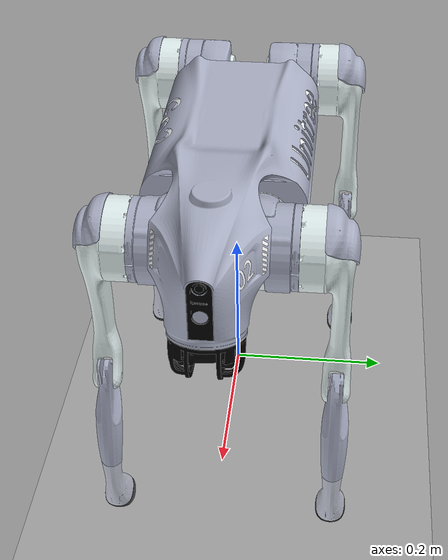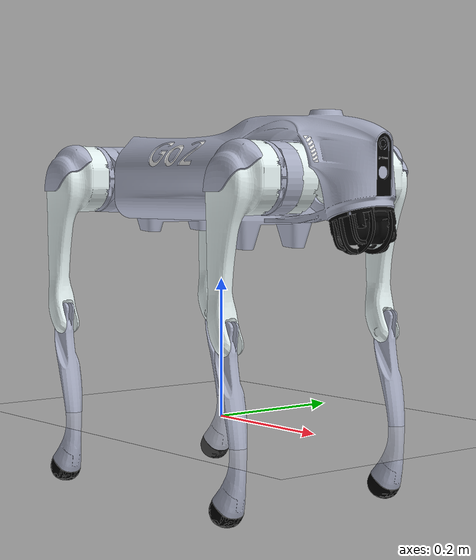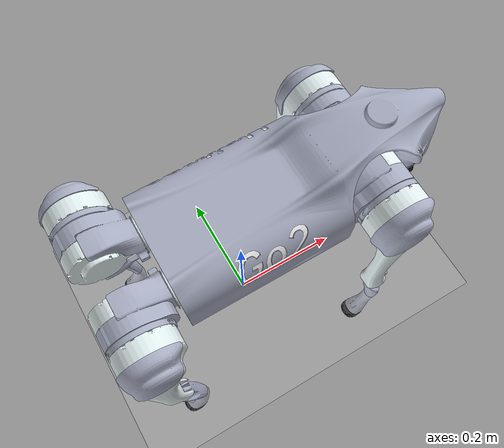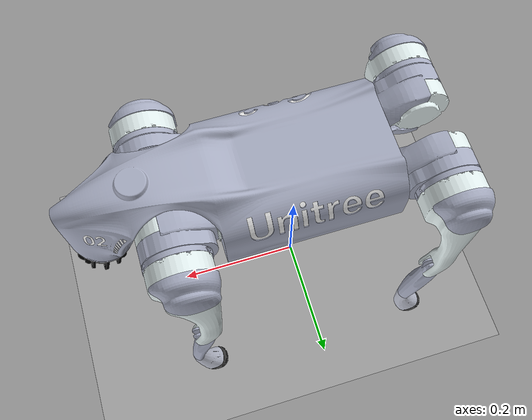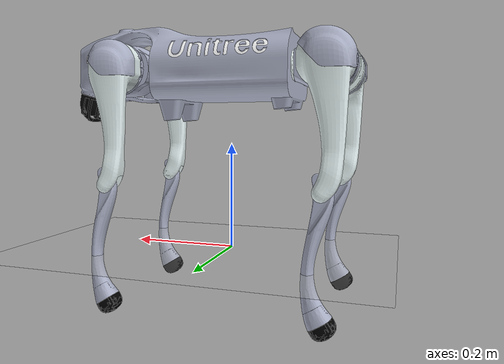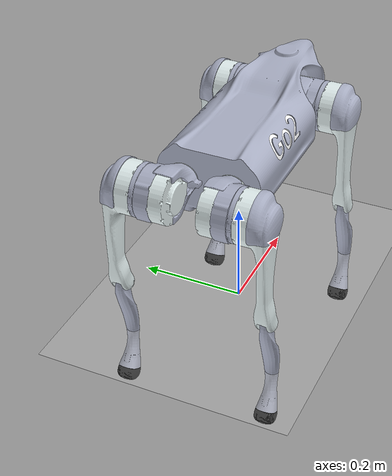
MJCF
<mujoco model="go2_description">
  <compiler angle="radian" autolimits="true" inertiafromgeom="false" meshdir="assets/go2"/>
  <option timestep="0.001" gravity="0 0 -9.81" integrator="implicitfast"/>

  <default>
    <joint damping="0.5" armature="0.01" frictionloss="0.05"/>
    <geom friction="1.2 0.005 0.0001" condim="3" contype="1" conaffinity="0"/>
    <position ctrllimited="true" forcelimited="true"/>
    <default class="collision">
      <geom group="3"/>
    </default>
    <default class="visual">
      <geom type="mesh" group="1" contype="0" conaffinity="0" mass="0"/>
    </default>
  </default>

  <asset>
    <mesh name="Go2_base_0" file="Go2_base_0.obj"/>
    <mesh name="Go2_base_1" file="Go2_base_1.obj"/>
    <mesh name="Go2_base_2" file="Go2_base_2.obj"/>
    <mesh name="Go2_base_3" file="Go2_base_3.obj"/>
    <mesh name="Go2_base_4" file="Go2_base_4.obj"/>
    <mesh name="Go2_hip_0" file="Go2_hip_0.obj"/>
    <mesh name="Go2_hip_1" file="Go2_hip_1.obj"/>
    <mesh name="Go2_thigh_0" file="Go2_thigh_0.obj"/>
    <mesh name="Go2_thigh_1" file="Go2_thigh_1.obj"/>
    <mesh name="Go2_calf_0" file="Go2_calf_0.obj"/>
    <mesh name="Go2_calf_1" file="Go2_calf_1.obj"/>
    <mesh name="Go2_foot_0" file="Go2_foot_0.obj"/>
    <mesh name="Go2_thigh_mirror_0" file="Go2_thigh_mirror_0.obj"/>
    <mesh name="Go2_thigh_mirror_1" file="Go2_thigh_mirror_1.obj"/>
    <mesh name="Go2_calf_mirror_0" file="Go2_calf_mirror_0.obj"/>
    <mesh name="Go2_calf_mirror_1" file="Go2_calf_mirror_1.obj"/>
  </asset>

  <worldbody>
    <geom name="floor" type="plane" size="10 10 0.1" contype="1" conaffinity="1" rgba="0.8 0.8 0.8 1"/>
    <light pos="0 0 2" dir="0 0 -1"/>

    <!-- Spawn above standing contact: nominal 0.3 + foot bottom 0.022 + clearance 0.02. -->
    <body name="base" pos="0 0 0.342">
      <freejoint name="root"/>
      <inertial pos="0.021112 0 -0.005366" mass="6.921" fullinertia="0.02448 0.098077 0.107 0.00012166 0.0014849 -3.12E-05"/>
      <geom name="base_collision" class="collision" type="box" size="0.1881 0.04675 0.057" rgba="0.2 0.3 0.6 1"/>
      <geom name="base_visual_0" class="visual" mesh="Go2_base_0" rgba="0.6717055 0.6924257 0.7742702 1"/>
      <geom name="base_visual_1" class="visual" mesh="Go2_base_1" rgba="1 1 1 1"/>
      <geom name="base_visual_2" class="visual" mesh="Go2_base_2" rgba="0.009018 0.009018 0.009018 1"/>
      <geom name="base_visual_3" class="visual" mesh="Go2_base_3" rgba="0.01341 0.01341 0.01341 1"/>
      <geom name="base_visual_4" class="visual" mesh="Go2_base_4" rgba="0.023455 0.023455 0.023455 1"/>
      <body name="Head_upper" pos="0.285 0 0.01">
        <inertial pos="0 0 0" mass="0.001" fullinertia="9.6e-06 9.6e-06 9.6e-06 0 0 0"/>
        <geom name="Head_upper_collision" class="collision" type="cylinder" size="0.05 0.045" rgba="0.5 0.5 0.5 1"/>
        <body name="Head_lower" pos="0.008 0 -0.07">
          <inertial pos="0 0 0" mass="0.001" fullinertia="9.6e-06 9.6e-06 9.6e-06 0 0 0"/>
          <geom name="Head_lower_collision" class="collision" type="sphere" size="0.047" rgba="0.5 0.5 0.5 1"/>
        </body>
      </body>
      <body name="FL_hip" pos="0.1934 0.0465 0">
        <joint name="FL_hip_joint" type="hinge" axis="1 0 0" range="-1.0472 1.0472"/>
        <inertial pos="-0.0054 0.00194 -0.000105" mass="0.678" fullinertia="0.00048 0.000884 0.000596 -3.01E-06 1.11E-06 -1.42E-06"/>
        <geom name="FL_hip_collision" class="collision" type="cylinder" size="0.046 0.02" pos="0 0.08 0" quat="0.7071067811865476 0.7071067811865475 0.0 0.0" rgba="0.35 0.35 0.35 1"/>
        <geom name="FL_hip_visual_0" class="visual" mesh="Go2_hip_0" rgba="0.6717055 0.6924257 0.7742702 1"/>
        <geom name="FL_hip_visual_1" class="visual" mesh="Go2_hip_1" rgba="0.9 0.95 0.95 1"/>
        <body name="FL_thigh" pos="0 0.0955 0">
          <joint name="FL_thigh_joint" type="hinge" axis="0 1 0" range="-1.5708 3.4907"/>
          <inertial pos="-0.00374 -0.0223 -0.0327" mass="1.152" fullinertia="0.00584 0.0058 0.00103 8.72E-05 -0.000289 0.000808"/>
          <geom name="FL_thigh_collision" class="collision" type="box" size="0.1065 0.01225 0.017" pos="0 0 -0.1065" quat="0.7071067811865476 0.0 0.7071067811865475 0.0" rgba="0.35 0.35 0.35 1"/>
          <geom name="FL_thigh_visual_0" class="visual" mesh="Go2_thigh_0" rgba="0.6717055 0.6924257 0.7742702 1"/>
          <geom name="FL_thigh_visual_1" class="visual" mesh="Go2_thigh_1" rgba="0.9 0.95 0.95 1"/>
          <body name="FL_calf" pos="0 0 -0.213">
            <joint name="FL_calf_joint" type="hinge" axis="0 1 0" range="-2.7227 -0.83776"/>
            <inertial pos="0.00548 -0.000975 -0.115" mass="0.154" fullinertia="0.00108 0.0011 3.29E-05 3.4E-07 1.72E-05 8.28E-06"/>
            <geom name="FL_calf_collision" class="collision" type="cylinder" size="0.012 0.06" pos="0.008 0 -0.06" quat="0.9944925627484974 0.0 -0.10480716882888248 0.0" rgba="0.35 0.35 0.35 1"/>
            <geom name="FL_calf_visual_0" class="visual" mesh="Go2_calf_0" rgba="0 0 0 1"/>
            <geom name="FL_calf_visual_1" class="visual" mesh="Go2_calf_1" rgba="0.6717055 0.6924257 0.7742702 1"/>
            <body name="FL_calflower" pos="0.020 0 -0.148" quat="0.9996875162757026 0.0 0.024997395914712332 0.0">
              <!-- FL_calflower: massless in URDF -->
              <geom name="FL_calflower_collision" class="collision" type="cylinder" size="0.011 0.0325" rgba="0.5 0.5 0.5 1"/>
              <body name="FL_calflower1" pos="-0.01 0 -0.04" quat="0.9713379748520297 0.0 0.23770262642713458 0.0">
                <!-- FL_calflower1: massless in URDF -->
                <geom name="FL_calflower1_collision" class="collision" type="cylinder" size="0.0155 0.015" rgba="0.5 0.5 0.5 1"/>
              </body>
            </body>
            <body name="FL_foot" pos="0 0 -0.213">
              <inertial pos="0 0 0" mass="0.04" fullinertia="9.6e-06 9.6e-06 9.6e-06 0 0 0"/>
              <geom name="FL_foot_collision" class="collision" type="sphere" size="0.022" pos="-0.002 0 0" rgba="0.9 0.4 0.2 1"/>
              <geom name="FL_foot_visual" class="visual" mesh="Go2_foot_0" rgba="0 0 0 1"/>
              <site name="FL_foot_site" pos="0 0 0" size="0.006"/>
            </body>
          </body>
          <body name="FL_calf_rotor" pos="0 -0.03235 0">
            <inertial pos="0.0 0.0 0.0" mass="0.089" fullinertia="0.000059647 0.000111842 0.000059647 0.0 0.0 0.0"/>
          </body>
        </body>
        <body name="FL_thigh_rotor" pos="0 -0.00015 0">
          <inertial pos="0.0 0.0 0.0" mass="0.089" fullinertia="0.000059647 0.000111842 0.000059647 0.0 0.0 0.0"/>
        </body>
      </body>
      <body name="FL_hip_rotor" pos="0.11215 0.04675 0">
        <inertial pos="0.0 0.0 0.0" mass="0.089" fullinertia="0.000111842 0.000059647 0.000059647 0.0 0.0 0.0"/>
      </body>
      <body name="FR_hip" pos="0.1934 -0.0465 0">
        <joint name="FR_hip_joint" type="hinge" axis="1 0 0" range="-1.0472 1.0472"/>
        <inertial pos="-0.0054 -0.00194 -0.000105" mass="0.678" fullinertia="0.00048 0.000884 0.000596 3.01E-06 1.11E-06 1.42E-06"/>
        <geom name="FR_hip_collision" class="collision" type="cylinder" size="0.046 0.02" pos="0 -0.08 0" quat="0.7071067811865476 0.7071067811865475 0.0 0.0" rgba="0.35 0.35 0.35 1"/>
        <geom name="FR_hip_visual_0" class="visual" mesh="Go2_hip_0" quat="4.632679487995776e-05 0.999999998926914 0.0 0.0" rgba="0.6717055 0.6924257 0.7742702 1"/>
        <geom name="FR_hip_visual_1" class="visual" mesh="Go2_hip_1" quat="4.632679487995776e-05 0.999999998926914 0.0 0.0" rgba="0.9 0.95 0.95 1"/>
        <body name="FR_thigh" pos="0 -0.0955 0">
          <joint name="FR_thigh_joint" type="hinge" axis="0 1 0" range="-1.5708 3.4907"/>
          <inertial pos="-0.00374 0.0223 -0.0327" mass="1.152" fullinertia="0.00584 0.0058 0.00103 -8.72E-05 -0.000289 -0.000808"/>
          <geom name="FR_thigh_collision" class="collision" type="box" size="0.1065 0.01225 0.017" pos="0 0 -0.1065" quat="0.7071067811865476 0.0 0.7071067811865475 0.0" rgba="0.35 0.35 0.35 1"/>
          <geom name="FR_thigh_visual_0" class="visual" mesh="Go2_thigh_mirror_0" rgba="0.6717055 0.6924257 0.7742702 1"/>
          <geom name="FR_thigh_visual_1" class="visual" mesh="Go2_thigh_mirror_1" rgba="0.9 0.95 0.95 1"/>
          <body name="FR_calf" pos="0 0 -0.213">
            <joint name="FR_calf_joint" type="hinge" axis="0 1 0" range="-2.7227 -0.83776"/>
            <inertial pos="0.00548 0.000975 -0.115" mass="0.154" fullinertia="0.00108 0.0011 3.29E-05 -3.4E-07 1.72E-05 -8.28E-06"/>
            <geom name="FR_calf_collision" class="collision" type="cylinder" size="0.013 0.06" pos="0.01 0 -0.06" quat="0.9950041652780258 0.0 -0.09983341664682815 0.0" rgba="0.35 0.35 0.35 1"/>
            <geom name="FR_calf_visual_0" class="visual" mesh="Go2_calf_mirror_0" rgba="0 0 0 1"/>
            <geom name="FR_calf_visual_1" class="visual" mesh="Go2_calf_mirror_1" rgba="0.6717055 0.6924257 0.7742702 1"/>
            <body name="FR_calflower" pos="0.020 0 -0.148" quat="0.9996875162757026 0.0 0.024997395914712332 0.0">
              <!-- FR_calflower: massless in URDF -->
              <geom name="FR_calflower_collision" class="collision" type="cylinder" size="0.011 0.0325" rgba="0.5 0.5 0.5 1"/>
              <body name="FR_calflower1" pos="-0.01 0 -0.04" quat="0.9713379748520297 0.0 0.23770262642713458 0.0">
                <!-- FR_calflower1: massless in URDF -->
                <geom name="FR_calflower1_collision" class="collision" type="cylinder" size="0.0155 0.015" rgba="0.5 0.5 0.5 1"/>
              </body>
            </body>
            <body name="FR_foot" pos="0 0 -0.213">
              <inertial pos="0 0 0" mass="0.04" fullinertia="9.6e-06 9.6e-06 9.6e-06 0 0 0"/>
              <geom name="FR_foot_collision" class="collision" type="sphere" size="0.022" pos="-0.002 0 0" rgba="0.9 0.4 0.2 1"/>
              <geom name="FR_foot_visual" class="visual" mesh="Go2_foot_0" rgba="0 0 0 1"/>
              <site name="FR_foot_site" pos="0 0 0" size="0.006"/>
            </body>
          </body>
          <body name="FR_calf_rotor" pos="0 0.03235 0">
            <inertial pos="0.0 0.0 0.0" mass="0.089" fullinertia="0.000059647 0.000111842 0.000059647 0.0 0.0 0.0"/>
          </body>
        </body>
        <body name="FR_thigh_rotor" pos="0 0.00015 0">
          <inertial pos="0.0 0.0 0.0" mass="0.089" fullinertia="0.000059647 0.000111842 0.000059647 0.0 0.0 0.0"/>
        </body>
      </body>
      <body name="FR_hip_rotor" pos="0.11215 -0.04675 0">
        <inertial pos="0.0 0.0 0.0" mass="0.089" fullinertia="0.000111842 0.000059647 0.000059647 0.0 0.0 0.0"/>
      </body>
      <body name="RL_hip" pos="-0.1934 0.0465 0">
        <joint name="RL_hip_joint" type="hinge" axis="1 0 0" range="-1.0472 1.0472"/>
        <inertial pos="0.0054 0.00194 -0.000105" mass="0.678" fullinertia="0.00048 0.000884 0.000596 3.01E-06 -1.11E-06 -1.42E-06"/>
        <geom name="RL_hip_collision" class="collision" type="cylinder" size="0.046 0.02" pos="0 0.08 0" quat="0.7071067811865476 0.7071067811865475 0.0 0.0" rgba="0.35 0.35 0.35 1"/>
        <geom name="RL_hip_visual_0" class="visual" mesh="Go2_hip_0" quat="4.632679487995776e-05 0.0 0.999999998926914 0.0" rgba="0.6717055 0.6924257 0.7742702 1"/>
        <geom name="RL_hip_visual_1" class="visual" mesh="Go2_hip_1" quat="4.632679487995776e-05 0.0 0.999999998926914 0.0" rgba="0.9 0.95 0.95 1"/>
        <body name="RL_thigh" pos="0 0.0955 0">
          <joint name="RL_thigh_joint" type="hinge" axis="0 1 0" range="-0.5236 4.5379"/>
          <inertial pos="-0.00374 -0.0223 -0.0327" mass="1.152" fullinertia="0.00584 0.0058 0.00103 8.72E-05 -0.000289 0.000808"/>
          <geom name="RL_thigh_collision" class="collision" type="box" size="0.1065 0.01225 0.017" pos="0 0 -0.1065" quat="0.7071067811865476 0.0 0.7071067811865475 0.0" rgba="0.35 0.35 0.35 1"/>
          <geom name="RL_thigh_visual_0" class="visual" mesh="Go2_thigh_0" rgba="0.6717055 0.6924257 0.7742702 1"/>
          <geom name="RL_thigh_visual_1" class="visual" mesh="Go2_thigh_1" rgba="0.9 0.95 0.95 1"/>
          <body name="RL_calf" pos="0 0 -0.213">
            <joint name="RL_calf_joint" type="hinge" axis="0 1 0" range="-2.7227 -0.83776"/>
            <inertial pos="0.00548 -0.000975 -0.115" mass="0.154" fullinertia="0.00108 0.0011 3.29E-05 3.4E-07 1.72E-05 8.28E-06"/>
            <geom name="RL_calf_collision" class="collision" type="cylinder" size="0.013 0.06" pos="0.01 0 -0.06" quat="0.9950041652780258 0.0 -0.09983341664682815 0.0" rgba="0.35 0.35 0.35 1"/>
            <geom name="RL_calf_visual_0" class="visual" mesh="Go2_calf_0" rgba="0 0 0 1"/>
            <geom name="RL_calf_visual_1" class="visual" mesh="Go2_calf_1" rgba="0.6717055 0.6924257 0.7742702 1"/>
            <body name="RL_calflower" pos="0.020 0 -0.148" quat="0.9996875162757026 0.0 0.024997395914712332 0.0">
              <!-- RL_calflower: massless in URDF -->
              <geom name="RL_calflower_collision" class="collision" type="cylinder" size="0.011 0.0325" rgba="0.5 0.5 0.5 1"/>
              <body name="RL_calflower1" pos="-0.01 0 -0.04" quat="0.9713379748520297 0.0 0.23770262642713458 0.0">
                <!-- RL_calflower1: massless in URDF -->
                <geom name="RL_calflower1_collision" class="collision" type="cylinder" size="0.0155 0.015" rgba="0.5 0.5 0.5 1"/>
              </body>
            </body>
            <body name="RL_foot" pos="0 0 -0.213">
              <inertial pos="0 0 0" mass="0.04" fullinertia="9.6e-06 9.6e-06 9.6e-06 0 0 0"/>
              <geom name="RL_foot_collision" class="collision" type="sphere" size="0.022" pos="-0.002 0 0" rgba="0.9 0.4 0.2 1"/>
              <geom name="RL_foot_visual" class="visual" mesh="Go2_foot_0" rgba="0 0 0 1"/>
              <site name="RL_foot_site" pos="0 0 0" size="0.006"/>
            </body>
          </body>
          <body name="RL_calf_rotor" pos="0 -0.03235 0">
            <inertial pos="0.0 0.0 0.0" mass="0.089" fullinertia="0.000059647 0.000111842 0.000059647 0.0 0.0 0.0"/>
          </body>
        </body>
        <body name="RL_thigh_rotor" pos="0 -0.00015 0">
          <inertial pos="0.0 0.0 0.0" mass="0.089" fullinertia="0.000059647 0.000111842 0.000059647 0.0 0.0 0.0"/>
        </body>
      </body>
      <body name="RL_hip_rotor" pos="-0.11215 0.04675 0">
        <inertial pos="0.0 0.0 0.0" mass="0.089" fullinertia="0.000111842 0.000059647 0.000059647 0.0 0.0 0.0"/>
      </body>
      <body name="RR_hip" pos="-0.1934 -0.0465 0">
        <joint name="RR_hip_joint" type="hinge" axis="1 0 0" range="-1.0472 1.0472"/>
        <inertial pos="0.0054 -0.00194 -0.000105" mass="0.678" fullinertia="0.00048 0.000884 0.000596 -3.01E-06 -1.11E-06 1.42E-06"/>
        <geom name="RR_hip_collision" class="collision" type="cylinder" size="0.046 0.02" pos="0 -0.08 0" quat="0.7071067811865476 0.7071067811865475 0.0 0.0" rgba="0.35 0.35 0.35 1"/>
        <geom name="RR_hip_visual_0" class="visual" mesh="Go2_hip_0" quat="2.14617192384968e-09 4.632679483024512e-05 4.632679483024512e-05 -0.9999999978538281" rgba="0.6717055 0.6924257 0.7742702 1"/>
        <geom name="RR_hip_visual_1" class="visual" mesh="Go2_hip_1" quat="2.14617192384968e-09 4.632679483024512e-05 4.632679483024512e-05 -0.9999999978538281" rgba="0.9 0.95 0.95 1"/>
        <body name="RR_thigh" pos="0 -0.0955 0">
          <joint name="RR_thigh_joint" type="hinge" axis="0 1 0" range="-0.5236 4.5379"/>
          <inertial pos="-0.00374 0.0223 -0.0327" mass="1.152" fullinertia="0.00584 0.0058 0.00103 -8.72E-05 -0.000289 -0.000808"/>
          <geom name="RR_thigh_collision" class="collision" type="box" size="0.1065 0.01225 0.017" pos="0 0 -0.1065" quat="0.7071067811865476 0.0 0.7071067811865475 0.0" rgba="0.35 0.35 0.35 1"/>
          <geom name="RR_thigh_visual_0" class="visual" mesh="Go2_thigh_mirror_0" rgba="0.6717055 0.6924257 0.7742702 1"/>
          <geom name="RR_thigh_visual_1" class="visual" mesh="Go2_thigh_mirror_1" rgba="0.9 0.95 0.95 1"/>
          <body name="RR_calf" pos="0 0 -0.213">
            <joint name="RR_calf_joint" type="hinge" axis="0 1 0" range="-2.7227 -0.83776"/>
            <inertial pos="0.00548 0.000975 -0.115" mass="0.154" fullinertia="0.00108 0.0011 3.29E-05 -3.4E-07 1.72E-05 -8.28E-06"/>
            <geom name="RR_calf_collision" class="collision" type="cylinder" size="0.013 0.06" pos="0.01 0 -0.06" quat="0.9950041652780258 0.0 -0.09983341664682815 0.0" rgba="0.35 0.35 0.35 1"/>
            <geom name="RR_calf_visual_0" class="visual" mesh="Go2_calf_mirror_0" rgba="0 0 0 1"/>
            <geom name="RR_calf_visual_1" class="visual" mesh="Go2_calf_mirror_1" rgba="0.6717055 0.6924257 0.7742702 1"/>
            <body name="RR_calflower" pos="0.020 0 -0.148" quat="0.9996875162757026 0.0 0.024997395914712332 0.0">
              <!-- RR_calflower: massless in URDF -->
              <geom name="RR_calflower_collision" class="collision" type="cylinder" size="0.011 0.0325" rgba="0.5 0.5 0.5 1"/>
              <body name="RR_calflower1" pos="-0.01 0 -0.04" quat="0.9713379748520297 0.0 0.23770262642713458 0.0">
                <!-- RR_calflower1: massless in URDF -->
                <geom name="RR_calflower1_collision" class="collision" type="cylinder" size="0.0155 0.015" rgba="0.5 0.5 0.5 1"/>
              </body>
            </body>
            <body name="RR_foot" pos="0 0 -0.213">
              <inertial pos="0 0 0" mass="0.04" fullinertia="9.6e-06 9.6e-06 9.6e-06 0 0 0"/>
              <geom name="RR_foot_collision" class="collision" type="sphere" size="0.022" pos="-0.002 0 0" rgba="0.9 0.4 0.2 1"/>
              <geom name="RR_foot_visual" class="visual" mesh="Go2_foot_0" rgba="0 0 0 1"/>
              <site name="RR_foot_site" pos="0 0 0" size="0.006"/>
            </body>
          </body>
          <body name="RR_calf_rotor" pos="0 0.03235 0">
            <inertial pos="0.0 0.0 0.0" mass="0.089" fullinertia="0.000059647 0.000111842 0.000059647 0.0 0.0 0.0"/>
          </body>
        </body>
        <body name="RR_thigh_rotor" pos="0 0.00015 0">
          <inertial pos="0.0 0.0 0.0" mass="0.089" fullinertia="0.000059647 0.000111842 0.000059647 0.0 0.0 0.0"/>
        </body>
      </body>
      <body name="RR_hip_rotor" pos="-0.11215 -0.04675 0">
        <inertial pos="0.0 0.0 0.0" mass="0.089" fullinertia="0.000111842 0.000059647 0.000059647 0.0 0.0 0.0"/>
      </body>
      <body name="imu" pos="-0.02557 0 0.04232">
        <!-- imu: massless in URDF -->
      </body>
      <body name="radar" pos="0.28945 0 -0.046825" quat="0.1313159683094573 0.0 0.9913405653290647 0.0">
        <!-- radar: massless in URDF -->
      </body>
      <body name="front_camera" pos="0.32715 -0.00003 0.04297">
        <!-- front_camera: massless in URDF -->
      </body>
    </body>
  </worldbody>

  <actuator>
    <position name="FL_hip_joint" joint="FL_hip_joint" kp="80.0" kv="6.0" ctrlrange="-1.0472 1.0472" forcerange="-23.7 23.7"/>
    <position name="FL_thigh_joint" joint="FL_thigh_joint" kp="160.0" kv="6.0" ctrlrange="-1.5708 3.4907" forcerange="-23.7 23.7"/>
    <position name="FL_calf_joint" joint="FL_calf_joint" kp="160.0" kv="6.0" ctrlrange="-2.7227 -0.83776" forcerange="-45.43 45.43"/>
    <position name="FR_hip_joint" joint="FR_hip_joint" kp="80.0" kv="6.0" ctrlrange="-1.0472 1.0472" forcerange="-23.7 23.7"/>
    <position name="FR_thigh_joint" joint="FR_thigh_joint" kp="160.0" kv="6.0" ctrlrange="-1.5708 3.4907" forcerange="-23.7 23.7"/>
    <position name="FR_calf_joint" joint="FR_calf_joint" kp="160.0" kv="6.0" ctrlrange="-2.7227 -0.83776" forcerange="-45.43 45.43"/>
    <position name="RL_hip_joint" joint="RL_hip_joint" kp="80.0" kv="6.0" ctrlrange="-1.0472 1.0472" forcerange="-23.7 23.7"/>
    <position name="RL_thigh_joint" joint="RL_thigh_joint" kp="160.0" kv="6.0" ctrlrange="-0.5236 4.5379" forcerange="-23.7 23.7"/>
    <position name="RL_calf_joint" joint="RL_calf_joint" kp="160.0" kv="6.0" ctrlrange="-2.7227 -0.83776" forcerange="-45.43 45.43"/>
    <position name="RR_hip_joint" joint="RR_hip_joint" kp="80.0" kv="6.0" ctrlrange="-1.0472 1.0472" forcerange="-23.7 23.7"/>
    <position name="RR_thigh_joint" joint="RR_thigh_joint" kp="160.0" kv="6.0" ctrlrange="-0.5236 4.5379" forcerange="-23.7 23.7"/>
    <position name="RR_calf_joint" joint="RR_calf_joint" kp="160.0" kv="6.0" ctrlrange="-2.7227 -0.83776" forcerange="-45.43 45.43"/>
  </actuator>
</mujoco>
